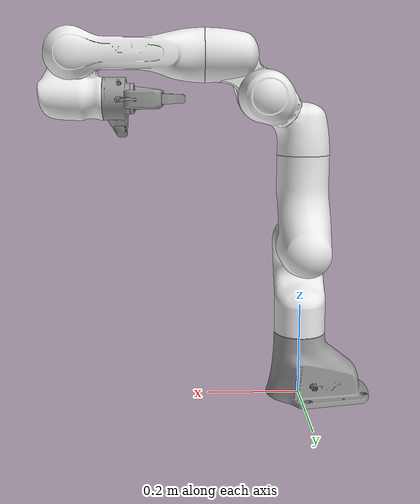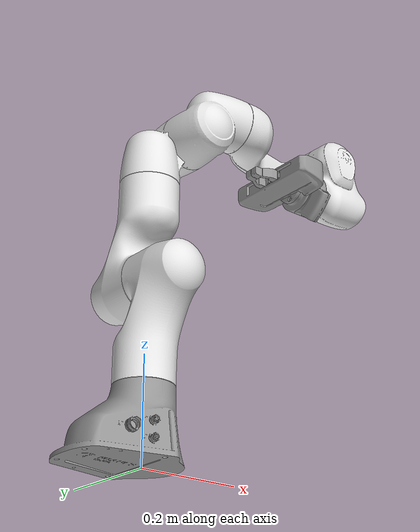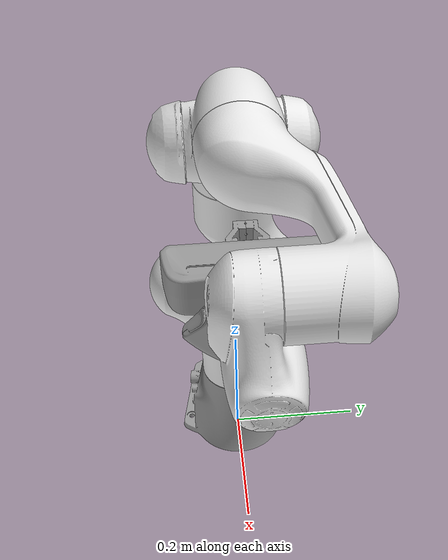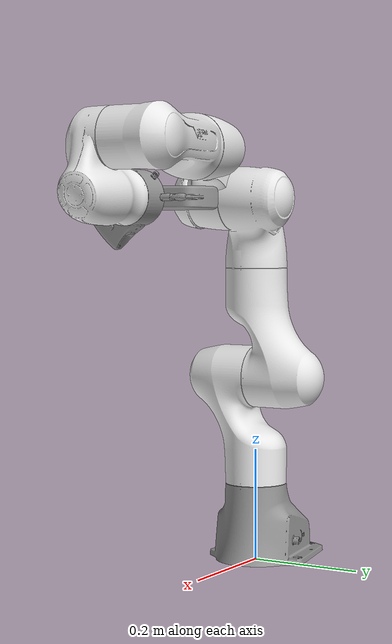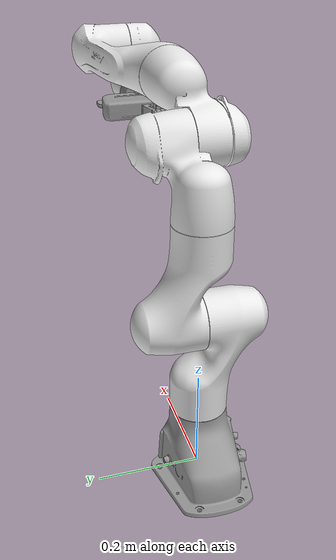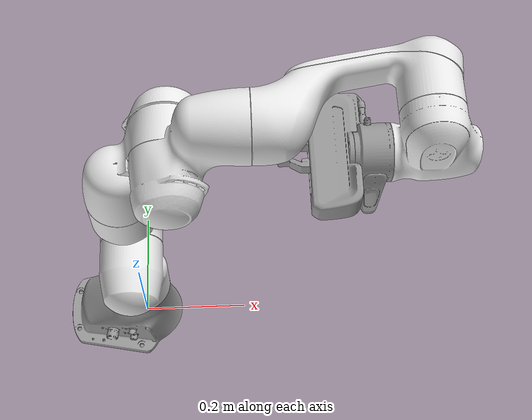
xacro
<?xml version="1.0" encoding="utf-8"?>
<robot xmlns:xacro="http://www.ros.org/wiki/xacro" name="panda">
  <xacro:include filename="panda_arm.xacro"/>
  <xacro:include filename="hand.xacro"/>
  <xacro:include filename="panda.gazebo.xacro" />
  <xacro:include filename="panda.transmission.xacro" />

  <xacro:panda_arm description_pkg="panda_description" />
  <xacro:hand ns="panda" rpy="0 0 0" connected_to="panda_link8" description_pkg="panda_description"/>
  <xacro:panda_gazebo robot_name="panda" />
  <xacro:panda_transmission robot_name="panda" />
</robot>

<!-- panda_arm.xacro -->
<robot xmlns:xacro="http://www.ros.org/wiki/xacro" name="panda">
  <!-- Gazebo adaptation: dynamics (dampening)-->
  <xacro:property name="joint_damping" value="1.0"/>
  <!-- END Gazebo adaptation-->

  <xacro:arg name="xyz" default="0 0 0" />
  <xacro:arg name="rpy" default="0 0 0" />

  <xacro:macro name="panda_arm" params="arm_id:='panda' description_pkg:='panda_description' connected_to:=''">
    <!-- Gazebo adaptation: Attach Robot rigidly to the world frame in Gazebo -->
    <link name="world" />
    <joint name="robot_to_world" type="fixed">
      <parent link="world" />
      <child link="${arm_id}_link0" />
      <origin xyz="$(arg xyz)" rpy="$(arg rpy)" />
      <!-- Gazebo adaptation: dampening-->
      <dynamics damping="${joint_damping}"/>
      <!-- END Gazebo adaptation-->
    </joint>
    <!-- END Gazebo adaptation -->
    <xacro:unless value="${not connected_to}">
      <joint name="${arm_id}_joint_${connected_to}" type="fixed">
        <parent link="${connected_to}"/>
        <child link="${arm_id}_link0"/>
        <origin rpy="${rpy}" xyz="${xyz}"/>
        <!-- Gazebo adaptation: dampening-->
        <dynamics damping="${joint_damping}"/>
        <!-- END Gazebo adaptation-->
      </joint>
    </xacro:unless>
    <link name="${arm_id}_link0">
      <visual>
        <geometry>
          <mesh filename="package://${description_pkg}/meshes/visual/link0.dae"/>
        </geometry>
      </visual>
      <collision>
        <geometry>
          <mesh filename="package://${description_pkg}/meshes/collision/link0.stl"/>
        </geometry>
      </collision>
      <!-- Gazebo adaptaion: ineria-->
      <inertial>
        <origin xyz="0 0 0" rpy="0 0 0" />
        <mass value="3.06357" />
        <inertia ixx="0.3" ixy="0.0" ixz="0.0" iyy="0.3" iyz="0.0" izz="0.3" />
      </inertial>
      <!-- END Gazebo adaptation-->
    </link>
    <link name="${arm_id}_link1">
      <visual>
        <geometry>
          <mesh filename="package://${description_pkg}/meshes/visual/link1.dae"/>
        </geometry>
      </visual>
      <collision>
        <geometry>
          <mesh filename="package://${description_pkg}/meshes/collision/link1.stl"/>
        </geometry>
      </collision>
      <!-- Gazebo adaptaion: ineria-->
      <inertial>
        <origin xyz="0 0 0" rpy="0 0 0" />
        <mass value="2.34471" />
        <inertia ixx="0.3" ixy="0.0" ixz="0.0" iyy="0.3" iyz="0.0" izz="0.3" />
      </inertial>
      <!-- END Gazebo adaptation-->
    </link>
    <joint name="${arm_id}_joint1" type="revolute">
      <safety_controller k_position="100.0" k_velocity="40.0" soft_lower_limit="-2.8973" soft_upper_limit="2.8973"/>
      <origin rpy="0 0 0" xyz="0 0 0.333"/>
      <parent link="${arm_id}_link0"/>
      <child link="${arm_id}_link1"/>
      <axis xyz="0 0 1"/>
      <limit effort="870" lower="-2.8973" upper="2.8973" velocity="2.1750"/>
      <!-- Gazebo adaptation: dampening-->
      <dynamics damping="${joint_damping}"/>
      <!-- END Gazebo adaptation-->
    </joint>
    <link name="${arm_id}_link2">
      <visual>
        <geometry>
          <mesh filename="package://${description_pkg}/meshes/visual/link2.dae"/>
        </geometry>
      </visual>
      <collision>
        <geometry>
          <mesh filename="package://${description_pkg}/meshes/collision/link2.stl"/>
        </geometry>
      </collision>
      <!-- Gazebo adaptaion: ineria-->
      <inertial>
        <origin xyz="0 0 0" rpy="0 0 0" />
        <mass value="2.36414" />
        <inertia ixx="0.3" ixy="0.0" ixz="0.0" iyy="0.3" iyz="0.0" izz="0.3" />
      </inertial>
      <!-- END Gazebo adaptation-->
    </link>
    <joint name="${arm_id}_joint2" type="revolute">
      <safety_controller k_position="100.0" k_velocity="40.0" soft_lower_limit="-1.7628" soft_upper_limit="1.7628"/>
      <origin rpy="${-pi/2} 0 0" xyz="0 0 0"/>
      <parent link="${arm_id}_link1"/>
      <child link="${arm_id}_link2"/>
      <axis xyz="0 0 1"/>
      <limit effort="870" lower="-1.7628" upper="1.7628" velocity="2.1750"/>
      <!-- Gazebo adaptation: dampening-->
      <dynamics damping="${joint_damping}"/>
      <!-- END Gazebo adaptation-->
    </joint>
    <link name="${arm_id}_link3">
      <visual>
        <geometry>
          <mesh filename="package://${description_pkg}/meshes/visual/link3.dae"/>
        </geometry>
      </visual>
      <collision>
        <geometry>
          <mesh filename="package://${description_pkg}/meshes/collision/link3.stl"/>
        </geometry>
      </collision>
      <!-- Gazebo adaptaion: ineria-->
      <inertial>
        <origin xyz="0 0 0" rpy="0 0 0" />
        <mass value="2.38050" />
        <inertia ixx="0.3" ixy="0.0" ixz="0.0" iyy="0.3" iyz="0.0" izz="0.3" />
      </inertial>
      <!-- END Gazebo adaptation-->
    </link>
    <joint name="${arm_id}_joint3" type="revolute">
      <safety_controller k_position="100.0" k_velocity="40.0" soft_lower_limit="-2.8973" soft_upper_limit="2.8973"/>
      <origin rpy="${pi/2} 0 0" xyz="0 -0.316 0"/>
      <parent link="${arm_id}_link2"/>
      <child link="${arm_id}_link3"/>
      <axis xyz="0 0 1"/>
      <limit effort="870" lower="-2.8973" upper="2.8973" velocity="2.1750"/>
      <!-- Gazebo adaptation: dampening-->
      <dynamics damping="${joint_damping}"/>
      <!-- END Gazebo adaptation-->
    </joint>
    <link name="${arm_id}_link4">
      <visual>
        <geometry>
          <mesh filename="package://${description_pkg}/meshes/visual/link4.dae"/>
        </geometry>
      </visual>
      <collision>
        <geometry>
          <mesh filename="package://${description_pkg}/meshes/collision/link4.stl"/>
        </geometry>
      </collision>
      <!-- Gazebo adaptaion: ineria-->
      <inertial>
        <origin xyz="0 0 0" rpy="0 0 0" />
        <mass value="2.42754" />
        <inertia ixx="0.3" ixy="0.0" ixz="0.0" iyy="0.3" iyz="0.0" izz="0.3" />
      </inertial>
      <!-- END Gazebo adaptation-->
    </link>
    <joint name="${arm_id}_joint4" type="revolute">
      <safety_controller k_position="100.0" k_velocity="40.0" soft_lower_limit="-3.0718" soft_upper_limit="-0.0698"/>
      <origin rpy="${pi/2} 0 0" xyz="0.0825 0 0"/>
      <parent link="${arm_id}_link3"/>
      <child link="${arm_id}_link4"/>
      <axis xyz="0 0 1"/>
      <limit effort="870" lower="-3.0718" upper="-0.0698" velocity="2.1750"/>
      <!-- Gazebo adaptation: dampening-->
      <dynamics damping="${joint_damping}"/>
      <!-- END Gazebo adaptation-->
    </joint>
    <link name="${arm_id}_link5">
      <visual>
        <geometry>
          <mesh filename="package://${description_pkg}/meshes/visual/link5.dae"/>
        </geometry>
      </visual>
      <collision>
        <geometry>
          <mesh filename="package://${description_pkg}/meshes/collision/link5.stl"/>
        </geometry>
      </collision>
      <!-- Gazebo adaptaion: ineria-->
      <inertial>
        <origin xyz="0 0 0" rpy="0 0 0" />
        <mass value="3.49611" />
        <inertia ixx="0.3" ixy="0.0" ixz="0.0" iyy="0.3" iyz="0.0" izz="0.3" />
      </inertial>
      <!-- END Gazebo adaptation-->
    </link>
    <joint name="${arm_id}_joint5" type="revolute">
      <safety_controller k_position="100.0" k_velocity="40.0" soft_lower_limit="-2.8973" soft_upper_limit="2.8973"/>
      <origin rpy="${-pi/2} 0 0" xyz="-0.0825 0.384 0"/>
      <parent link="${arm_id}_link4"/>
      <child link="${arm_id}_link5"/>
      <axis xyz="0 0 1"/>
      <limit effort="12" lower="-2.8973" upper="2.8973" velocity="2.6100"/>
      <!-- Gazebo adaptation: dampening-->
      <dynamics damping="${joint_damping}"/>
      <!-- END Gazebo adaptation-->
    </joint>
    <link name="${arm_id}_link6">
      <visual>
        <geometry>
          <mesh filename="package://${description_pkg}/meshes/visual/link6.dae"/>
        </geometry>
      </visual>
      <collision>
        <geometry>
          <mesh filename="package://${description_pkg}/meshes/collision/link6.stl"/>
        </geometry>
      </collision>
      <!-- Gazebo adaptaion: ineria-->
      <inertial>
        <origin xyz="0 0 0" rpy="0 0 0" />
        <mass value="1.46736" />
        <inertia ixx="0.3" ixy="0.0" ixz="0.0" iyy="0.3" iyz="0.0" izz="0.3" />
      </inertial>
      <!-- END Gazebo adaptation-->
    </link>
    <joint name="${arm_id}_joint6" type="revolute">
      <safety_controller k_position="100.0" k_velocity="40.0" soft_lower_limit="-0.0175" soft_upper_limit="3.7525"/>
      <origin rpy="${pi/2} 0 0" xyz="0 0 0"/>
      <parent link="${arm_id}_link5"/>
      <child link="${arm_id}_link6"/>
      <axis xyz="0 0 1"/>
      <limit effort="12" lower="-0.0175" upper="3.7525" velocity="2.6100"/>
      <!-- Gazebo adaptation: dampening-->
      <dynamics damping="${joint_damping}"/>
      <!-- END Gazebo adaptation-->
    </joint>
    <link name="${arm_id}_link7">
      <visual>
        <geometry>
          <mesh filename="package://${description_pkg}/meshes/visual/link7.dae"/>
        </geometry>
      </visual>
      <collision>
        <geometry>
          <mesh filename="package://${description_pkg}/meshes/collision/link7.stl"/>
        </geometry>
      </collision>
      <!-- Gazebo adaptaion: ineria-->
      <inertial>
        <origin xyz="0 0 0" rpy="0 0 0" />
        <mass value="0.45606" />
        <inertia ixx="0.3" ixy="0.0" ixz="0.0" iyy="0.3" iyz="0.0" izz="0.3" />
      </inertial>
      <!-- END Gazebo adaptation-->
    </link>
    <joint name="${arm_id}_joint7" type="revolute">
      <safety_controller k_position="100.0" k_velocity="40.0" soft_lower_limit="-2.8973" soft_upper_limit="2.8973"/>
      <origin rpy="${pi/2} 0 0" xyz="0.088 0 0"/>
      <parent link="${arm_id}_link6"/>
      <child link="${arm_id}_link7"/>
      <axis xyz="0 0 1"/>
      <limit effort="12" lower="-2.8973" upper="2.8973" velocity="2.6100"/>
      <!-- Gazebo adaptation: dampening-->
      <dynamics damping="${joint_damping}"/>
      <!-- END Gazebo adaptation-->
    </joint>
    <link name="${arm_id}_link8" />
    <joint name="${arm_id}_joint8" type="fixed">
      <origin rpy="0 0 0" xyz="0 0 0.107"/>
      <parent link="${arm_id}_link7"/>
      <child link="${arm_id}_link8"/>
      <axis xyz="0 0 0"/>
    </joint>
  </xacro:macro>
</robot>

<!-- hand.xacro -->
<robot xmlns:xacro="http://www.ros.org/wiki/xacro" name="hand">
  <!-- Gazebo adaptation: dynamics (dampening)-->
  <xacro:property name="joint_damping" value="5.0"/>
  <xacro:property name="gripper_joint_friction" value="100.0"/>
  <!-- END Gazebo adaptation-->

  <xacro:macro name="hand" params="description_pkg:='panda' connected_to:='' ns:='' rpy:='0 0 0' xyz:='0 0 0' ">
    <xacro:unless value="${connected_to == ''}">
      <joint name="${ns}_hand_joint" type="fixed">
        <parent link="${connected_to}"/>
        <child link="${ns}_hand"/>
        <origin xyz="${xyz}" rpy="${rpy}"/>
        <!-- Gazebo adaptation: dampening-->
        <dynamics damping="${joint_damping}"/>
        <!-- END Gazebo adaptation-->
      </joint>
    </xacro:unless>
    <link name="${ns}_hand">
      <visual>
        <geometry>
          <mesh filename="package://${description_pkg}/meshes/visual/hand.dae"/>
        </geometry>
      </visual>
      <collision>
        <geometry>
          <mesh filename="package://${description_pkg}/meshes/collision/hand.stl"/>
        </geometry>
      </collision>
      <!-- Gazebo adaptaion: ineria-->
      <inertial>
        <origin xyz="0 0 0" rpy="0 0 0" />
        <mass value="0.67893" />
        <inertia ixx="0.3" ixy="0.0" ixz="0.0" iyy="0.3" iyz="0.0" izz="0.3" />
      </inertial>
      <!-- END Gazebo adaptation-->
    </link>
    <link name="${ns}_leftfinger">
      <visual>
        <geometry>
          <mesh filename="package://${description_pkg}/meshes/visual/finger.dae"/>
        </geometry>
      </visual>
      <collision>
        <geometry>
          <mesh filename="package://${description_pkg}/meshes/collision/finger.stl"/>
        </geometry>
      </collision>
      <!-- Gazebo adaptaion: ineria-->
      <inertial>
        <origin xyz="0 0 0" rpy="0 0 0" />
        <mass value="0.01053" />
        <inertia ixx="0.3" ixy="0.0" ixz="0.0" iyy="0.3" iyz="0.0" izz="0.3" />
      </inertial>
      <!-- END Gazebo adaptation-->
    </link>
    <link name="${ns}_rightfinger">
      <visual>
        <origin xyz="0 0 0" rpy="0 0 ${pi}"/>
        <geometry>
          <mesh filename="package://${description_pkg}/meshes/visual/finger.dae"/>
        </geometry>
      </visual>
      <collision>
        <origin xyz="0 0 0" rpy="0 0 ${pi}"/>
        <geometry>
          <mesh filename="package://${description_pkg}/meshes/collision/finger.stl"/>
        </geometry>
      </collision>
      <!-- Gazebo adaptaion: ineria-->
      <inertial>
        <origin xyz="0 0 0" rpy="0 0 0" />
        <mass value="0.01053" />
        <inertia ixx="0.3" ixy="0.0" ixz="0.0" iyy="0.3" iyz="0.0" izz="0.3" />
      </inertial>
      <!-- END Gazebo adaptation-->
    </link>
    <joint name="${ns}_finger_joint1" type="prismatic">
      <parent link="${ns}_hand"/>
      <child link="${ns}_leftfinger"/>
      <origin xyz="0 0 0.0584" rpy="0 0 0"/>
      <axis xyz="0 1 0"/>
      <limit effort="100" lower="0.0" upper="0.04" velocity="0.2"/>
      <!-- Gazebo adaptation: dampening-->
      <dynamics damping="${joint_damping}" friction="${gripper_joint_friction}"/>
      <!-- END Gazebo adaptation-->
    </joint>
    <joint name="${ns}_finger_joint2" type="prismatic">
      <parent link="${ns}_hand"/>
      <child link="${ns}_rightfinger"/>
      <origin xyz="0 0 0.0584" rpy="0 0 0"/>
      <axis xyz="0 -1 0"/>
      <limit effort="100" lower="0.0" upper="0.04" velocity="0.2"/>
      <!-- Gazebo adaptation: dampening-->
      <dynamics damping="${joint_damping}" friction="${gripper_joint_friction}"/>
      <!-- END Gazebo adaptation-->
    </joint>
  </xacro:macro>
</robot>
